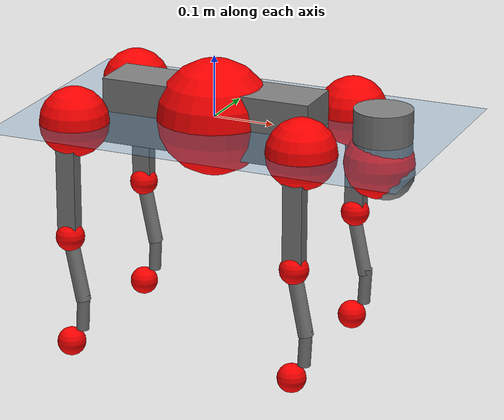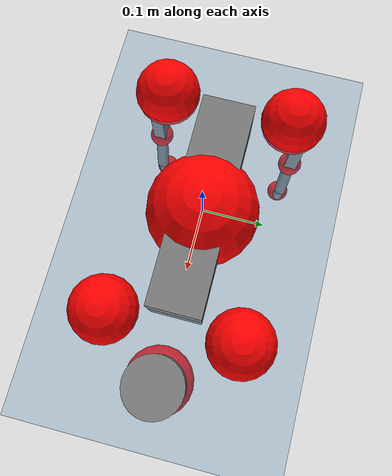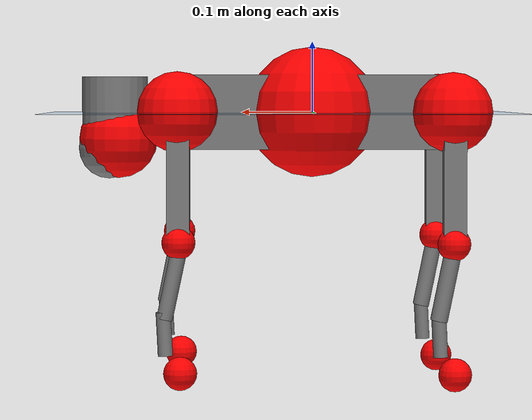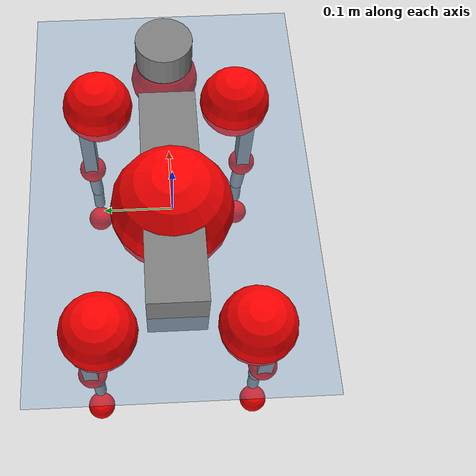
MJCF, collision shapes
<mujoco model="go2">
  <compiler angle="radian" assetdir="assets" balanceinertia="true" inertiafromgeom="false"/>

  <option timestep="0.005" density="1.2" viscosity="2e-05"/>

  <size nkey="1"/>

  <visual>
    <quality shadowsize="8192"/>
    <map shadowclip="0.5"/>
  </visual>

  <default>
    <default class="/">
      <geom contype="0" conaffinity="0" group="1" solref="-1000 -80"/>
      <site size="0.01 0.005 0.005" group="5"/>
      <general forcelimited="true" biastype="affine" gainprm="20" biasprm="0 -20 -0.5"/>
      <default class="go2">
        <joint armature="0.01" damping="0.01" frictionloss="0.2"/>
        <geom condim="1" margin="0.001"/>
        <default class="visual">
          <geom type="mesh" group="2"/>
        </default>
        <default class="collision">
          <geom group="3"/>
          <default class="foot">
            <geom size="0.022 0 0" condim="6" priority="1" friction="0.8 0.02 0.01" solimp="0.015 1 0.022"/>
          </default>
        </default>
        <default class="reward_collision_sphere">
          <geom group="5" rgba="1 0 0 1"/>
        </default>
      </default>
    </default>
  </default>

  <asset>
    <texture type="skybox" colorspace="auto" name="//unnamed_texture_0" builtin="gradient" rgb1="0.95 0.95 0.95" rgb2="0.95 0.95 0.95" width="100" height="600"/>
    <texture type="2d" colorspace="auto" name="texplane" builtin="checker" rgb1="0.345 0.575 0.748" rgb2="0.345 0.575 0.748" markrgb="1 1 1" width="512" height="512"/>
    <material name="MatPlane" class="/" texture="texplane" texuniform="true" texrepeat="2 2" specular="0.9"/>
    <material name="metal" class="/" rgba="0.9 0.95 0.95 1"/>
    <material name="black" class="/" rgba="0 0 0 1"/>
    <material name="white" class="/"/>
    <material name="gray" class="/" rgba="0.671705 0.692426 0.77427 1"/>
    <mesh name="base_0" class="/" file="base_0.obj"/>
    <mesh name="base_1" class="/" file="base_1.obj"/>
    <mesh name="base_2" class="/" file="base_2.obj"/>
    <mesh name="base_3" class="/" file="base_3.obj"/>
    <mesh name="base_4" class="/" file="base_4.obj"/>
    <mesh name="hip_0" class="/" file="hip_0.obj"/>
    <mesh name="hip_1" class="/" file="hip_1.obj"/>
    <mesh name="thigh_0" class="/" file="thigh_0.obj"/>
    <mesh name="thigh_1" class="/" file="thigh_1.obj"/>
    <mesh name="thigh_mirror_0" class="/" file="thigh_mirror_0.obj"/>
    <mesh name="thigh_mirror_1" class="/" file="thigh_mirror_1.obj"/>
    <mesh name="calf_0" class="/" file="calf_0.obj"/>
    <mesh name="calf_1" class="/" file="calf_1.obj"/>
    <mesh name="calf_mirror_0" class="/" file="calf_mirror_0.obj"/>
    <mesh name="calf_mirror_1" class="/" file="calf_mirror_1.obj"/>
    <mesh name="foot" class="/" file="foot.obj"/>
  </asset>

  <worldbody>
    <geom name="floor" class="/" size="100 100 0.125" type="plane" group="0" material="MatPlane"/>
    <light name="toplight_shadow" class="/" pos="0 0 5" dir="0.0990148 0.0990148 -0.990148" type="directional" ambient="0.04 0.04 0.04" diffuse="0.55 0.55 0.55" specular="0.12 0.12 0.12"/>
    <light name="toplight_fill" class="/" pos="0 0 5" dir="0.0990148 0.0990148 -0.990148" type="directional" castshadow="false" ambient="0.04 0.04 0.04" diffuse="0.3 0.3 0.3" specular="0.08 0.08 0.08"/>
    <body name="trunk" childclass="go2" pos="0.000562448 0.000293926 0.000565978" quat="1 -2.16599e-05 -7.73854e-06 -1.29714e-05">
      <inertial pos="0.0202848 -0.000763515 -0.00453122" quat="-0.00132016 0.714422 -0.00274316 0.699709" mass="5.38642" diaginertia="0.0974027 0.0735287 0.0104489"/>
      <joint name="//unnamed_joint_0" type="free" armature="0" damping="0" frictionloss="0"/>
      <geom name="//unnamed_geom_1" class="visual" material="black" mesh="base_0"/>
      <geom name="//unnamed_geom_2" class="visual" material="black" mesh="base_1"/>
      <geom name="//unnamed_geom_3" class="visual" material="black" mesh="base_2"/>
      <geom name="//unnamed_geom_4" class="visual" material="white" mesh="base_3"/>
      <geom name="//unnamed_geom_5" class="visual" material="gray" mesh="base_4"/>
      <geom name="trunk_1" class="collision" size="0.173639 0.043156 0.052618" type="box"/>
      <geom name="trunk_2" class="collision" size="0.0461561 0.0415405" pos="0.279727 0 0.008437" type="cylinder"/>
      <geom name="trunk_3" class="collision" size="0.0433867" pos="0.287579 0 -0.050622"/>
      <geom name="//unnamed_geom_9" class="reward_collision_sphere" size="0.0923122"/>
      <geom name="//unnamed_geom_10" class="reward_collision_sphere" size="0.0553873" pos="0.274819 0 -0.0379665"/>
      <site name="imu" pos="-0.0236191 -0.00388641 0.0352111" size="0.00923122"/>
      <camera name="track" pos="0 -1.88834 0" quat="0.707107 0.707107 0 0" mode="trackcom"/>
      <camera name="ego_camera" pos="0.306227 0 0.0379665" quat="-0.5 -0.5 0.5 0.5"/>
      <body name="FL_hip" pos="0.189228 0.0433992 0.00127275" quat="1 0.00017425 -9.94591e-05 9.35418e-05">
        <inertial pos="-0.00470483 0.00281128 -0.00046764" quat="0.497364 0.498323 0.505974 0.498292" mass="0.540293" diaginertia="0.000816056 0.00044585 0.000205264"/>
        <joint name="FL_hip_joint" pos="0 0 0" axis="0.999957 0.00673573 0.00630228" stiffness="0.00519754" range="-1.04081 1.05147" armature="0.00917492" damping="0.000926668" frictionloss="0.185145"/>
        <geom name="//unnamed_geom_11" class="visual" material="metal" mesh="hip_0"/>
        <geom name="//unnamed_geom_12" class="visual" material="gray" mesh="hip_1"/>
        <geom name="//unnamed_geom_13" class="collision" size="0.0424636 0.0184624" pos="0 0.0755335 0" quat="0.707107 0.707107 0 0" type="cylinder"/>
        <geom name="//unnamed_geom_14" class="reward_collision_sphere" size="0.0553873" pos="0 0.0660919 0"/>
        <body name="FL_thigh" pos="-0.000971224 0.0904257 0.00151399" quat="1 -4.75184e-05 -1.64362e-05 -0.000234449">
          <inertial pos="-0.00465351 -0.0200328 -0.0274245" quat="0.829511 0.0846435 -0.0199487 0.551678" mass="0.91786" diaginertia="0.00542797 0.00440866 0.000382654"/>
          <joint name="FL_thigh_joint" pos="0 0 0" axis="-0.00142318 0.999995 -0.0028077" range="-1.58137 3.49422" armature="0.00925281" damping="0.00700925" frictionloss="0.184411"/>
          <geom name="//unnamed_geom_15" class="visual" material="metal" mesh="thigh_0"/>
          <geom name="//unnamed_geom_16" class="visual" material="gray" mesh="thigh_1"/>
          <geom name="//unnamed_geom_17" class="collision" size="0.0983125 0.0113082 0.0156931" pos="0 0 -0.089854" quat="0.707107 0 0.707107 0" type="box"/>
          <body name="FL_calf" pos="-0.000504048 -0.000969847 -0.180039" quat="1 0.000327269 0.000160049 0.000233793">
            <inertial pos="0.00675326 -0.000324875 -0.119586" quat="0.710302 0.00212107 -0.0040165 0.703882" mass="0.190028" diaginertia="0.00138334 0.00109555 2.29949e-05"/>
            <joint name="FL_calf_joint" pos="0 0 0" axis="0.00319528 0.999995 -0.000246528" range="-2.72564 -0.842395" armature="0.0089391" damping="0.00407378" frictionloss="0.177935"/>
            <geom name="//unnamed_geom_18" class="visual" material="gray" mesh="calf_0"/>
            <geom name="//unnamed_geom_19" class="visual" material="black" mesh="calf_1"/>
            <geom name="FL_calf0" class="collision" size="0.0110775 0.0553873" pos="0.00785198 0 -0.050622" quat="0.994493 0 -0.104807 0" type="cylinder"/>
            <geom name="//unnamed_geom_21" class="collision" size="0.0101543 0.0300015" pos="0.0196299 0 -0.124868" quat="0.999688 0 0.0249974 0" type="cylinder"/>
            <geom name="//unnamed_geom_22" class="visual" pos="0 0 -0.179708" quat="1 0 0 0" material="black" mesh="foot"/>
            <geom name="FL_foot" class="foot" size="0.0166221" pos="-0.00196299 0 -0.179708"/>
            <geom name="//unnamed_geom_24" class="reward_collision_sphere" size="0.0230781"/>
            <geom name="//unnamed_geom_25" class="reward_collision_sphere" size="0.0230781" pos="-0.00196299 0 -0.179708"/>
            <site name="FL_foot" class="foot" pos="-0.00196299 0 -0.179708" size="0.00923122"/>
          </body>
        </body>
      </body>
      <body name="FR_hip" pos="0.190768 -0.0430743 -0.000254266" quat="1 -5.84725e-05 -5.37177e-06 -0.000347727">
        <inertial pos="-0.00592383 -0.00145701 -0.000389387" quat="0.496492 0.506927 0.499449 0.497063" mass="0.535637" diaginertia="0.000820751 0.000451743 0.000209505"/>
        <joint name="FR_hip_joint" pos="0 0 0" axis="0.999998 0.00182058 0.00033358" stiffness="0.00358845" range="-1.04922 1.04807" armature="0.00937198" damping="0.0127905" frictionloss="0.188377"/>
        <geom name="//unnamed_geom_26" class="visual" pos="0 8.75249e-10 3.75412e-08" quat="4.63268e-05 1 0 0" material="metal" mesh="hip_0"/>
        <geom name="//unnamed_geom_27" class="visual" pos="0 1.41888e-09 -9.28539e-08" quat="4.63268e-05 1 0 0" material="gray" mesh="hip_1"/>
        <geom name="//unnamed_geom_28" class="collision" size="0.0424636 0.0184624" pos="0 -0.0755335 0" quat="0.707107 0.707107 0 0" type="cylinder"/>
        <geom name="//unnamed_geom_29" class="reward_collision_sphere" size="0.0553873" pos="0 -0.0660919 0"/>
        <body name="FR_thigh" pos="0.000348511 -0.0910169 0.00152943" quat="1 -1.28934e-05 9.44334e-06 0.000137866">
          <inertial pos="-0.00448099 0.0218225 -0.0272004" quat="0.551446 -0.0173125 0.0814759 0.830042" mass="0.903238" diaginertia="0.00547894 0.00440691 0.00037634"/>
          <joint name="FR_thigh_joint" pos="0 0 0" axis="-0.0026024 -0.999996 0.000649853" stiffness="0.00305489" range="-3.49341 1.55836" armature="0.0092775" damping="0.0106446" frictionloss="0.180553"/>
          <geom name="//unnamed_geom_30" class="visual" material="metal" mesh="thigh_mirror_0"/>
          <geom name="//unnamed_geom_31" class="visual" material="gray" mesh="thigh_mirror_1"/>
          <geom name="//unnamed_geom_32" class="collision" size="0.0983125 0.0113082 0.0156931" pos="0 0 -0.089854" quat="0.707107 0 0.707107 0" type="box"/>
          <body name="FR_calf" pos="-2.77099e-05 -0.000128603 -0.178822" quat="1 -3.99478e-05 3.84582e-05 -2.03388e-05">
            <inertial pos="0.00631053 0.000444435 -0.11933" quat="0.703623 -0.00383468 0.00196682 0.71056" mass="0.190152" diaginertia="0.00135831 0.00109905 2.29479e-05"/>
            <joint name="FR_calf_joint" pos="0 0 0" axis="-0.000109758 -0.999999 -0.00100367" range="0.831586 2.70625" armature="0.00921712" damping="0.00511453" frictionloss="0.187158"/>
            <geom name="//unnamed_geom_33" class="visual" material="gray" mesh="calf_mirror_0"/>
            <geom name="//unnamed_geom_34" class="visual" material="black" mesh="calf_mirror_1"/>
            <geom name="FR_calf0" class="collision" size="0.0120006 0.0553873" pos="0.00981497 0 -0.050622" quat="0.995004 0 -0.0998334 0" type="cylinder"/>
            <geom name="//unnamed_geom_36" class="collision" size="0.0101543 0.0300015" pos="0.0196299 0 -0.124868" quat="0.999688 0 0.0249974 0" type="cylinder"/>
            <geom name="//unnamed_geom_37" class="visual" pos="0 0 -0.179708" quat="1 0 0 0" material="black" mesh="foot"/>
            <geom name="FR_foot" class="foot" size="0.0224032" pos="-0.00196299 0 -0.179708"/>
            <geom name="//unnamed_geom_39" class="reward_collision_sphere" size="0.0230781"/>
            <geom name="//unnamed_geom_40" class="reward_collision_sphere" size="0.0230781" pos="-0.00196299 0 -0.179708"/>
            <site name="FR_foot" class="foot" pos="-0.00196299 0 -0.179708" size="0.00923122"/>
          </body>
        </body>
      </body>
      <body name="RL_hip" pos="-0.189689 0.0439003 0.00026081" quat="1 -4.53678e-05 -3.98818e-05 -3.08774e-05">
        <inertial pos="0.00527229 0.00246631 0.000743049" quat="0.507454 0.496814 0.495027 0.500614" mass="0.537442" diaginertia="0.000807123 0.000448925 0.000206225"/>
        <joint name="RL_hip_joint" pos="0 0 0" axis="-0.999812 -0.00923624 -0.0170553" range="-1.0469 1.06359" armature="0.00945689" damping="0.0158546" frictionloss="0.182883"/>
        <geom name="//unnamed_geom_41" class="visual" pos="-1.20044e-09 0 -2.35313e-07" quat="4.63268e-05 0 1 0" material="metal" mesh="hip_0"/>
        <geom name="//unnamed_geom_42" class="visual" pos="-1.94605e-09 0 -2.08689e-07" quat="4.63268e-05 0 1 0" material="gray" mesh="hip_1"/>
        <geom name="//unnamed_geom_43" class="collision" size="0.0424636 0.0184624" pos="0 0.0755335 0" quat="0.707107 0.707107 0 0" type="cylinder"/>
        <geom name="//unnamed_geom_44" class="reward_collision_sphere" size="0.0553873" pos="0 0.0660919 0"/>
        <body name="RL_thigh" pos="-0.00036513 0.0903018 -0.000597055" quat="1 -6.00836e-06 -1.48317e-06 3.94749e-06">
          <inertial pos="-0.00351732 -0.0207121 -0.0272886" quat="0.829542 0.0847751 -0.0200591 0.551607" mass="0.913699" diaginertia="0.0054403 0.00442116 0.000373511"/>
          <joint name="RL_thigh_joint" pos="0 0 0" axis="0.00170615 0.999995 0.00262273" range="-0.526189 4.53939" armature="0.00887858" damping="0.0119483" frictionloss="0.185119"/>
          <geom name="//unnamed_geom_45" class="visual" material="metal" mesh="thigh_0"/>
          <geom name="//unnamed_geom_46" class="visual" material="gray" mesh="thigh_1"/>
          <geom name="//unnamed_geom_47" class="collision" size="0.0983125 0.0113082 0.0156931" pos="0 0 -0.089854" quat="0.707107 0 0.707107 0" type="box"/>
          <body name="RL_calf" pos="0.000273064 -0.000825299 -0.180118" quat="1 8.93043e-05 -0.000305295 -0.000102924">
            <inertial pos="0.00611425 -1.03664e-06 -0.119367" quat="0.709369 3.87214e-05 -0.00169538 0.704835" mass="0.190238" diaginertia="0.00137256 0.00109671 2.26198e-05"/>
            <joint name="RL_calf_joint" pos="0 0 0" axis="-0.00328996 0.999938 -0.0106409" range="-2.72009 -0.846056" armature="0.00887863" damping="0.00644809" frictionloss="0.187743"/>
            <geom name="//unnamed_geom_48" class="visual" material="gray" mesh="calf_0"/>
            <geom name="//unnamed_geom_49" class="visual" material="black" mesh="calf_1"/>
            <geom name="RL_calf0" class="collision" size="0.0120006 0.0553873" pos="0.00981497 0 -0.050622" quat="0.995004 0 -0.0998334 0" type="cylinder"/>
            <geom name="//unnamed_geom_51" class="collision" size="0.0101543 0.0300015" pos="0.0196299 0 -0.124868" quat="0.999688 0 0.0249974 0" type="cylinder"/>
            <geom name="//unnamed_geom_52" class="visual" pos="0 0 -0.179708" quat="1 0 0 0" material="black" mesh="foot"/>
            <geom name="RL_foot" class="foot" size="0.0175982" pos="-0.00196299 0 -0.179708"/>
            <geom name="//unnamed_geom_54" class="reward_collision_sphere" size="0.0230781"/>
            <geom name="//unnamed_geom_55" class="reward_collision_sphere" size="0.0230781" pos="-0.00196299 0 -0.179708"/>
            <site name="RL_foot" class="foot" pos="-0.00196299 0 -0.179708" size="0.00923122"/>
          </body>
        </body>
      </body>
      <body name="RR_hip" pos="-0.189782 -0.043658 -0.000607676" quat="1 0.00022662 0.000102174 -0.000212866">
        <inertial pos="0.00540673 -0.00262253 -9.18294e-05" quat="0.498689 0.494233 0.49852 0.50845" mass="0.533366" diaginertia="0.00080348 0.000447107 0.000205991"/>
        <joint name="RR_hip_joint" pos="0 0 0" axis="-0.999995 0.00143084 -0.00289597" range="-1.04971 1.05116" armature="0.00950673" damping="0.00575459" frictionloss="0.188083"/>
        <geom name="//unnamed_geom_56" class="visual" pos="1.19914e-09 8.75249e-10 -2.72854e-07" quat="2.14617e-09 4.63268e-05 4.63268e-05 -1" material="metal" mesh="hip_0"/>
        <geom name="//unnamed_geom_57" class="visual" pos="1.94924e-09 1.41888e-09 -1.15835e-07" quat="2.14617e-09 4.63268e-05 4.63268e-05 -1" material="gray" mesh="hip_1"/>
        <geom name="//unnamed_geom_58" class="collision" size="0.0424636 0.0184624" pos="0 -0.0755335 0" quat="0.707107 0.707107 0 0" type="cylinder"/>
        <geom name="//unnamed_geom_59" class="reward_collision_sphere" size="0.0553873" pos="0 -0.0660919 0"/>
        <body name="RR_thigh" pos="8.90058e-06 -0.0906435 -0.00233418" quat="1 -3.09791e-05 5.56076e-05 0.000133831">
          <inertial pos="-0.003638 0.021033 -0.0276947" quat="0.551642 -0.0204892 0.0845009 0.829537" mass="0.909751" diaginertia="0.00539642 0.00433267 0.000375046"/>
          <joint name="RR_thigh_joint" pos="0 0 0" axis="-0.00277434 -0.999994 0.0019203" range="-4.53586 0.518621" armature="0.00933479" damping="0.0148809" frictionloss="0.188302"/>
          <geom name="//unnamed_geom_60" class="visual" material="metal" mesh="thigh_mirror_0"/>
          <geom name="//unnamed_geom_61" class="visual" material="gray" mesh="thigh_mirror_1"/>
          <geom name="//unnamed_geom_62" class="collision" size="0.0983125 0.0113082 0.0156931" pos="0 0 -0.089854" quat="0.707107 0 0.707107 0" type="box"/>
          <body name="RR_calf" pos="0.00122985 -0.000538727 -0.180746" quat="1 5.13278e-05 6.21666e-05 -0.000194788">
            <inertial pos="0.00675316 0.000710249 -0.119551" quat="0.70608 -0.00394493 0.00273491 0.708116" mass="0.190404" diaginertia="0.00135425 0.00109951 2.25507e-05"/>
            <joint name="RR_calf_joint" pos="0 0 0" axis="-0.00303351 -0.999995 0.000366586" range="0.829279 2.72666" armature="0.00903312" damping="0.00893201" frictionloss="0.180911"/>
            <geom name="//unnamed_geom_63" class="visual" material="gray" mesh="calf_mirror_0"/>
            <geom name="//unnamed_geom_64" class="visual" material="black" mesh="calf_mirror_1"/>
            <geom name="RR_calf0" class="collision" size="0.0120006 0.0553873" pos="0.00981497 0 -0.050622" quat="0.995004 0 -0.0998334 0" type="cylinder"/>
            <geom name="//unnamed_geom_66" class="collision" size="0.0101543 0.0300015" pos="0.0196299 0 -0.124868" quat="0.999688 0 0.0249974 0" type="cylinder"/>
            <geom name="//unnamed_geom_67" class="visual" pos="0 0 -0.179708" quat="1 0 0 0" material="black" mesh="foot"/>
            <geom name="RR_foot" class="foot" size="0.0216151" pos="-0.00196299 0 -0.179708"/>
            <geom name="//unnamed_geom_69" class="reward_collision_sphere" size="0.0230781"/>
            <geom name="//unnamed_geom_70" class="reward_collision_sphere" size="0.0230781" pos="-0.00196299 0 -0.179708"/>
            <site name="RR_foot" class="foot" pos="-0.00196299 0 -0.179708" size="0.00923122"/>
          </body>
        </body>
      </body>
    </body>
  </worldbody>

  <contact>
    <pair class="/" geom1="floor" geom2="FL_foot" name="//unnamed_contact_0"/>
    <pair class="/" geom1="floor" geom2="FR_foot" name="//unnamed_contact_1"/>
    <pair class="/" geom1="floor" geom2="RL_foot" name="//unnamed_contact_2"/>
    <pair class="/" geom1="floor" geom2="RR_foot" name="//unnamed_contact_3"/>
  </contact>

  <actuator>
    <general name="FL_hip" class="/" joint="FL_hip_joint" forcerange="-21.8526 21.8526" gainprm="18.1542" biasprm="0 -18.1542 -0.470434"/>
    <general name="FL_thigh" class="/" joint="FL_thigh_joint" forcerange="-22.5048 22.5048" gainprm="18.1542" biasprm="0 -18.1542 -0.470434"/>
    <general name="FL_calf" class="/" joint="FL_calf_joint" forcerange="-41.5933 41.5933" gainprm="18.1542" biasprm="0 -18.1542 -0.470434"/>
    <general name="FR_hip" class="/" joint="FR_hip_joint" forcerange="-21.7668 21.7668" gainprm="18.1542" biasprm="0 -18.1542 -0.470434"/>
    <general name="FR_thigh" class="/" joint="FR_thigh_joint" forcerange="-21.2091 21.2091" gainprm="18.1542" biasprm="0 -18.1542 -0.470434"/>
    <general name="FR_calf" class="/" joint="FR_calf_joint" forcerange="-41.3323 41.3323" gainprm="18.1542" biasprm="0 -18.1542 -0.470434"/>
    <general name="RL_hip" class="/" joint="RL_hip_joint" forcerange="-22.1546 22.1546" gainprm="18.1542" biasprm="0 -18.1542 -0.470434"/>
    <general name="RL_thigh" class="/" joint="RL_thigh_joint" forcerange="-22.3473 22.3473" gainprm="18.1542" biasprm="0 -18.1542 -0.470434"/>
    <general name="RL_calf" class="/" joint="RL_calf_joint" forcerange="-41.7629 41.7629" gainprm="18.1542" biasprm="0 -18.1542 -0.470434"/>
    <general name="RR_hip" class="/" joint="RR_hip_joint" forcerange="-22.573 22.573" gainprm="18.1542" biasprm="0 -18.1542 -0.470434"/>
    <general name="RR_thigh" class="/" joint="RR_thigh_joint" forcerange="-21.9233 21.9233" gainprm="18.1542" biasprm="0 -18.1542 -0.470434"/>
    <general name="RR_calf" class="/" joint="RR_calf_joint" forcerange="-42.9118 42.9118" gainprm="18.1542" biasprm="0 -18.1542 -0.470434"/>
  </actuator>

  <sensor>
    <gyro site="imu" name="imu_angular_velocity"/>
    <velocimeter site="imu" name="imu_linear_velocity"/>
    <framelinvel objtype="site" objname="FL_foot" name="FL_foot_global_linear_velocity"/>
    <framelinvel objtype="site" objname="FR_foot" name="FR_foot_global_linear_velocity"/>
    <framelinvel objtype="site" objname="RL_foot" name="RL_foot_global_linear_velocity"/>
    <framelinvel objtype="site" objname="RR_foot" name="RR_foot_global_linear_velocity"/>
  </sensor>

  <keyframe>
    <key name="home" qpos="0 0 0.325 1 0 0 0 0.1 0.8 -1.5 -0.1 -0.8 1.5 -0.1 0.8 -1.5 0.1 -0.8 1.5"/>
  </keyframe>
</mujoco>
